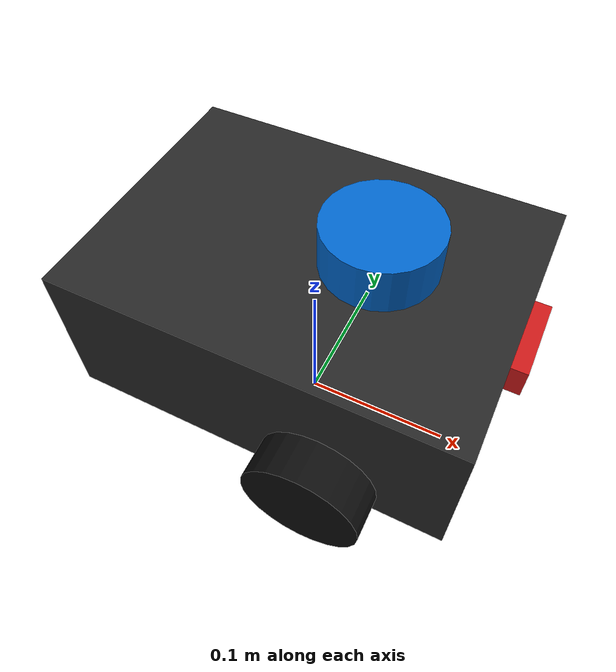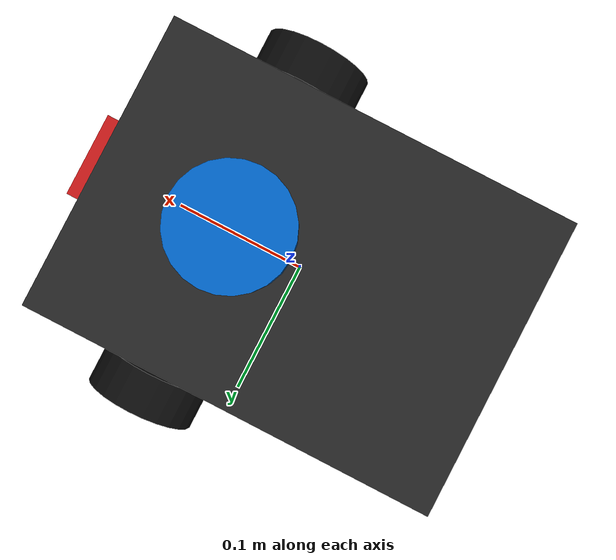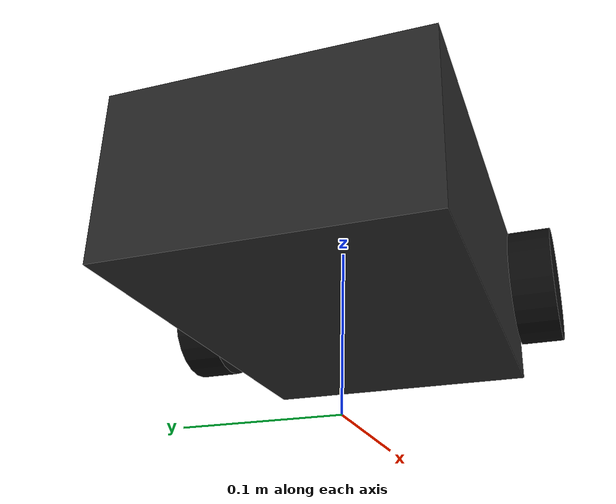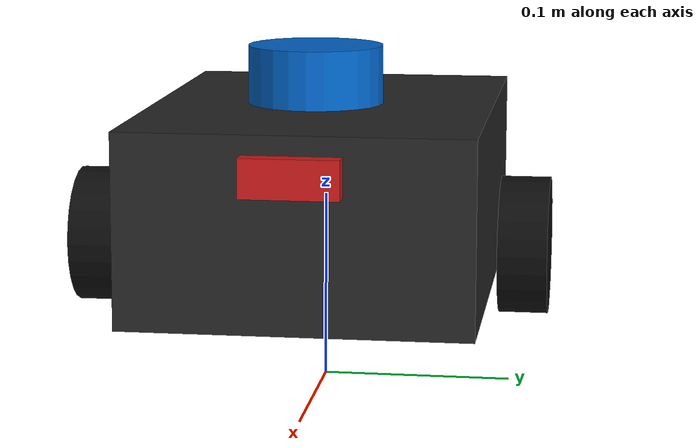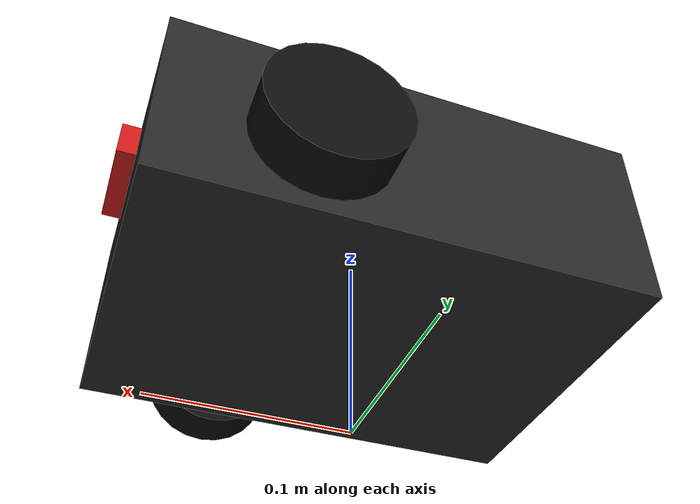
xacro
<?xml version="1.0"?>
<robot xmlns:xacro="http://www.ros.org/wiki/xacro" name="ugv_robot">

  <!-- Materials -->
  <material name="chassis_mat">
    <color rgba="0.15 0.15 0.15 1.0"/>
  </material>
  <material name="wheel_mat">
    <color rgba="0.05 0.05 0.05 1.0"/>
  </material>
  <material name="lidar_mat">
    <color rgba="0.0 0.4 0.8 1.0"/>
  </material>
  <material name="camera_mat">
    <color rgba="0.8 0.1 0.1 1.0"/>
  </material>

  <!-- Footprint & Base Link -->
  <link name="base_footprint"/>

  <joint name="base_footprint_joint" type="fixed">
    <parent link="base_footprint"/>
    <child link="base_link"/>
    <origin xyz="0 0 0.05" rpy="0 0 0"/>
  </joint>

  <link name="base_link">
    <visual>
      <origin xyz="0 0 0.05" rpy="0 0 0"/>
      <geometry>
        <box size="0.25 0.18 0.10"/>
      </geometry>
      <material name="chassis_mat"/>
    </visual>
    <collision>
      <origin xyz="0 0 0.05" rpy="0 0 0"/>
      <geometry>
        <box size="0.25 0.18 0.10"/>
      </geometry>
    </collision>
    <inertial>
      <origin xyz="0 0 0.05" rpy="0 0 0"/>
      <mass value="1.5"/>
      <inertia ixx="0.00525" ixy="0.0" ixz="0.0" iyy="0.00906" iyz="0.0" izz="0.01181"/>
    </inertial>
  </link>

  <!-- Left Wheel Macro -->
  <joint name="left_wheel_joint" type="continuous">
    <parent link="base_link"/>
    <child link="left_wheel"/>
    <origin xyz="0.05 0.11 0.035" rpy="-1.5708 0 0"/>
    <axis xyz="0 0 1"/>
  </joint>

  <link name="left_wheel">
    <visual>
      <geometry>
        <cylinder radius="0.035" length="0.025"/>
      </geometry>
      <material name="wheel_mat"/>
    </visual>
    <collision>
      <geometry>
        <cylinder radius="0.035" length="0.025"/>
      </geometry>
    </collision>
    <inertial>
      <mass value="0.1"/>
      <inertia ixx="0.0000358" ixy="0.0" ixz="0.0" iyy="0.0000358" iyz="0.0" izz="0.00006125"/>
    </inertial>
  </link>

  <!-- Right Wheel Macro -->
  <joint name="right_wheel_joint" type="continuous">
    <parent link="base_link"/>
    <child link="right_wheel"/>
    <origin xyz="0.05 -0.11 0.035" rpy="-1.5708 0 0"/>
    <axis xyz="0 0 1"/>
  </joint>

  <link name="right_wheel">
    <visual>
      <geometry>
        <cylinder radius="0.035" length="0.025"/>
      </geometry>
      <material name="wheel_mat"/>
    </visual>
    <collision>
      <geometry>
        <cylinder radius="0.035" length="0.025"/>
      </geometry>
    </collision>
    <inertial>
      <mass value="0.1"/>
      <inertia ixx="0.0000358" ixy="0.0" ixz="0.0" iyy="0.0000358" iyz="0.0" izz="0.00006125"/>
    </inertial>
  </link>

  <!-- Passive Caster Wheel -->
  <joint name="caster_joint" type="fixed">
    <parent link="base_link"/>
    <child link="caster_wheel"/>
    <origin xyz="-0.08 0 0.015" rpy="0 0 0"/>
  </joint>

  <link name="caster_wheel">
    <visual>
      <geometry>
        <sphere radius="0.015"/>
      </geometry>
      <material name="wheel_mat"/>
    </visual>
    <collision>
      <geometry>
        <sphere radius="0.015"/>
      </geometry>
    </collision>
    <inertial>
      <mass value="0.05"/>
      <inertia ixx="0.0000045" ixy="0.0" ixz="0.0" iyy="0.0000045" iyz="0.0" izz="0.0000045"/>
    </inertial>
  </link>

  <!-- LiDAR Sensor -->
  <joint name="laser_joint" type="fixed">
    <parent link="base_link"/>
    <child link="laser_frame"/>
    <origin xyz="0.04 0 0.12" rpy="0 0 0"/>
  </joint>

  <link name="laser_frame">
    <visual>
      <geometry>
        <cylinder radius="0.035" length="0.03"/>
      </geometry>
      <material name="lidar_mat"/>
    </visual>
    <collision>
      <geometry>
        <cylinder radius="0.035" length="0.03"/>
      </geometry>
    </collision>
    <inertial>
      <mass value="0.12"/>
      <inertia ixx="0.0000456" ixy="0.0" ixz="0.0" iyy="0.0000456" iyz="0.0" izz="0.0000735"/>
    </inertial>
  </link>

  <!-- Camera Sensor -->
  <joint name="camera_joint" type="fixed">
    <parent link="base_link"/>
    <child link="camera_link"/>
    <origin xyz="0.125 0 0.08" rpy="0 0 0"/>
  </joint>

  <link name="camera_link">
    <visual>
      <geometry>
        <box size="0.02 0.05 0.02"/>
      </geometry>
      <material name="camera_mat"/>
    </visual>
    <collision>
      <geometry>
        <box size="0.02 0.05 0.02"/>
      </geometry>
    </collision>
    <inertial>
      <mass value="0.03"/>
      <inertia ixx="0.00000725" ixy="0.0" ixz="0.0" iyy="0.000002" iyz="0.0" izz="0.00000725"/>
    </inertial>
  </link>

  <!-- IMU Frame -->
  <joint name="imu_joint" type="fixed">
    <parent link="base_link"/>
    <child link="imu_link"/>
    <origin xyz="0 0 0.05" rpy="0 0 0"/>
  </joint>

  <link name="imu_link"/>

  <!-- Gazebo Fortress Plugins -->
  <gazebo>
    <plugin filename="ignition-gazebo-diff-drive-system" name="ignition::gazebo::systems::DiffDrive">
      <left_joint>left_wheel_joint</left_joint>
      <right_joint>right_wheel_joint</right_joint>
      <wheel_separation>0.22</wheel_separation>
      <wheel_radius>0.035</wheel_radius>
      <odom_publish_frequency>50</odom_publish_frequency>
      <topic>/cmd_vel</topic>
      <odom_topic>/odom</odom_topic>
      <tf_topic>/tf</tf_topic>
      <frame_id>odom</frame_id>
      <child_frame_id>base_footprint</child_frame_id>
    </plugin>

    <plugin filename="ignition-gazebo-sensors-system" name="ignition::gazebo::systems::Sensors">
      <render_engine>ogre2</render_engine>
    </plugin>
  </gazebo>

  <!-- Gazebo Sensors -->
  <gazebo reference="laser_frame">
    <sensor name="gpu_lidar" type="gpu_lidar">
      <update_rate>10</update_rate>
      <topic>/scan</topic>
      <gz_frame_id>laser_frame</gz_frame_id>
      <lidar>
        <scan>
          <horizontal>
            <samples>360</samples>
            <resolution>1</resolution>
            <min_angle>-3.14159</min_angle>
            <max_angle>3.14159</max_angle>
          </horizontal>
        </scan>
        <range>
          <min>0.12</min>
          <max>12.0</max>
          <resolution>0.01</resolution>
        </range>
      </lidar>
      <always_on>true</always_on>
      <visualize>true</visualize>
    </sensor>
  </gazebo>

  <gazebo reference="camera_link">
    <sensor name="camera" type="camera">
      <update_rate>30</update_rate>
      <topic>/camera/image_raw</topic>
      <gz_frame_id>camera_link</gz_frame_id>
      <camera>
        <horizontal_fov>1.085</horizontal_fov>
        <image>
          <width>640</width>
          <height>480</height>
          <format>R8G8B8</format>
        </image>
        <clip>
          <near>0.05</near>
          <far>8.0</far>
        </clip>
      </camera>
      <always_on>true</always_on>
      <visualize>true</visualize>
    </sensor>
  </gazebo>

  <gazebo reference="imu_link">
    <sensor name="imu_sensor" type="imu">
      <update_rate>100</update_rate>
      <topic>/imu</topic>
      <gz_frame_id>imu_link</gz_frame_id>
      <always_on>true</always_on>
    </sensor>
  </gazebo>

</robot>
